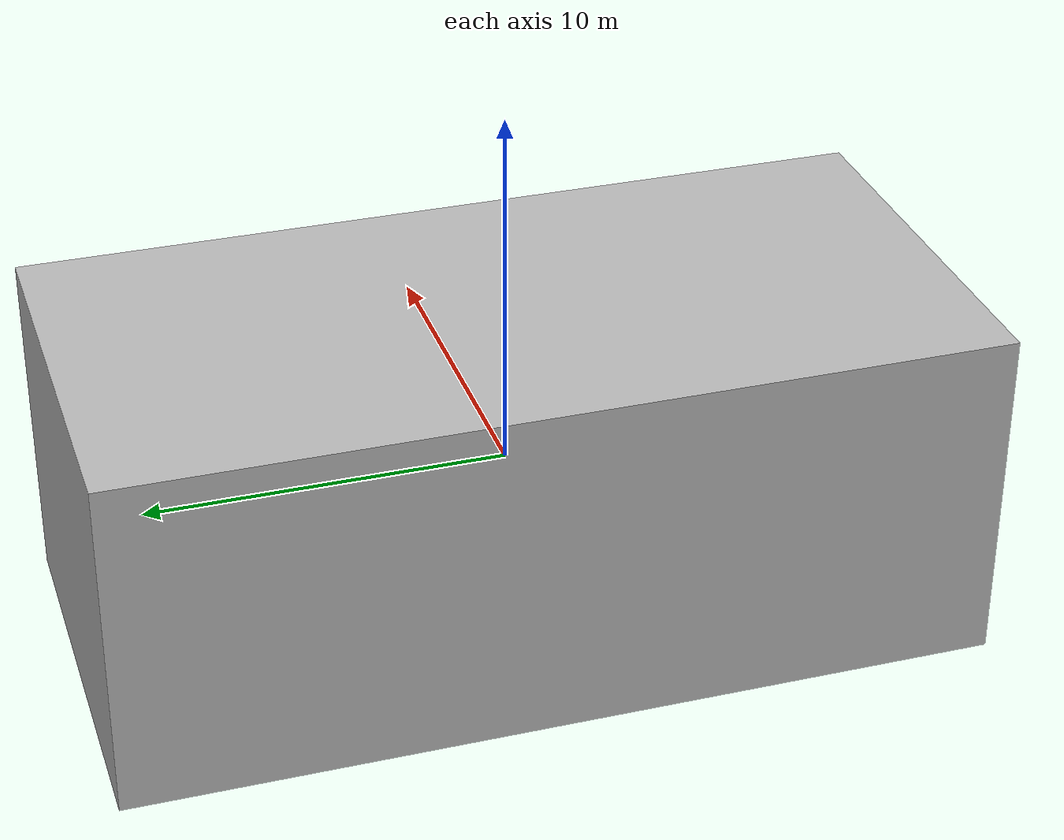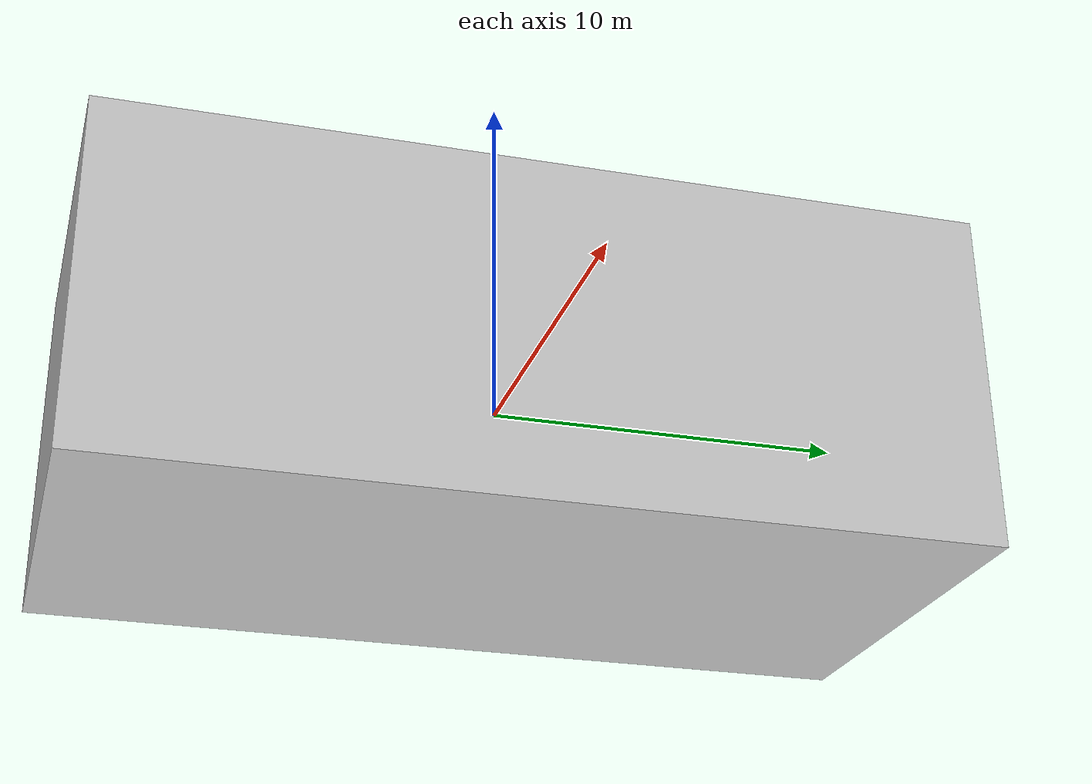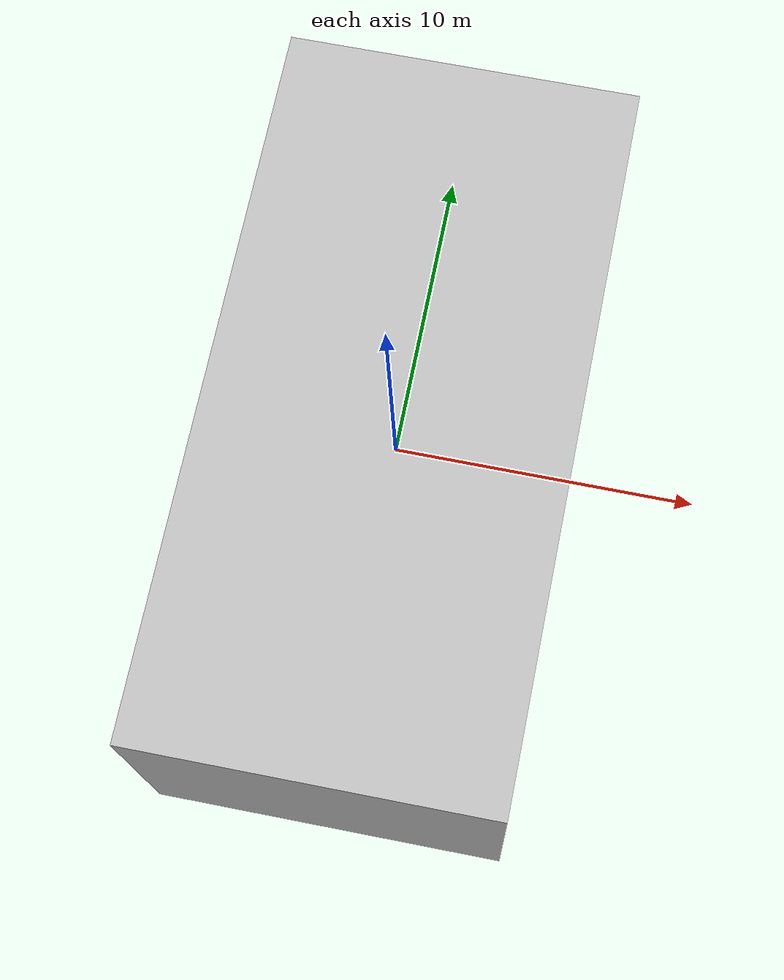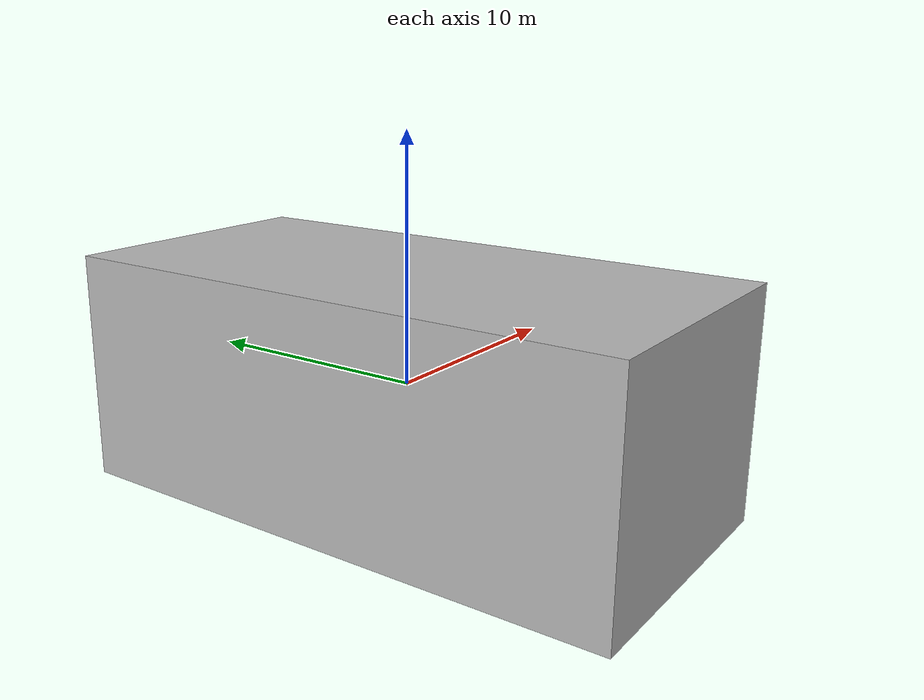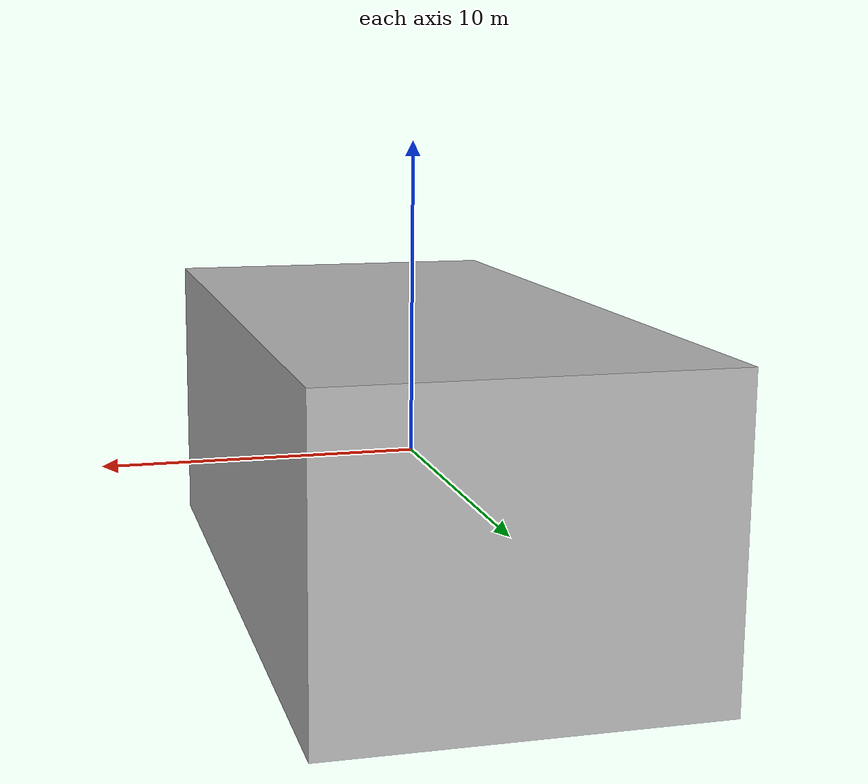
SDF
<?xml version='1.0'?>
<sdf version='1.4'>
  <model name="container-multi-multi-stack">
        <static>true</static>
   <link name='chassis'>
            <pose>0 0 0 0 0 0</pose>
            <collision name='collision'>
              <geometry>
                 <mesh>
            <uri>model://container-multi-multi-stack/containerstack2.dae</uri>
          </mesh>
              </geometry>
            </collision>

            <visual name='visual'>
              <geometry>
                <mesh>
                  <uri>model://container-multi-multi-stack/containerstack2.dae</uri>
                </mesh>
              </geometry>
            </visual>
          </link>
  </model>
</sdf>
